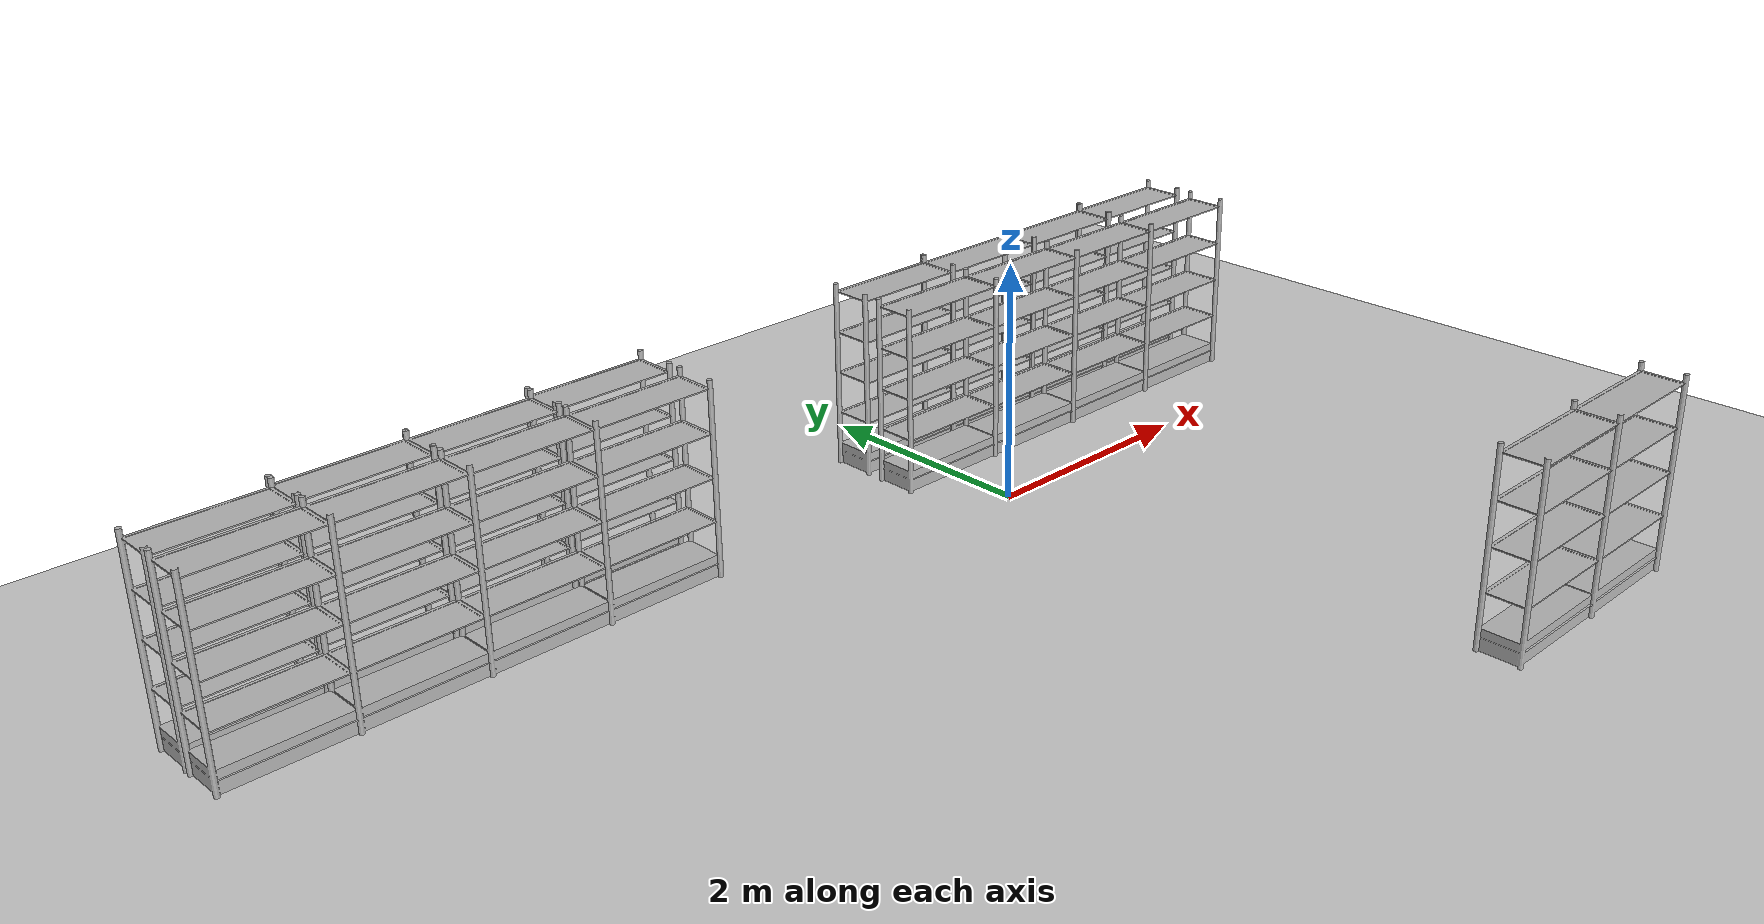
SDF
<sdf version="1.6">
 <world name="default">
  <light name="sun" type="directional">
   <pose>0 0 10 0 -0 0</pose>
   <diffuse>0.8 0.8 0.8 1</diffuse>
   <specular>0.2 0.2 0.2 1</specular>
   <attenuation>
    <range>1000</range>
    <constant>0.9</constant>
    <linear>0.01</linear>
    <quadratic>0.001</quadratic>
   </attenuation>
   <direction>-0.5 0.1 -0.9</direction>
  </light>
  <model name="ground_plane">
   <static>1</static>
   <link name="link">
    <collision name="collision">
     <geometry><plane><normal>0 0 1</normal><size>100 100</size></plane></geometry>
     <surface>
      <contact><collide_bitmask>65535</collide_bitmask></contact>
      <friction><ode><mu>1000</mu><mu2>1000</mu2></ode></friction>
     </surface>
    </collision>
    <visual name="visual">
     <cast_shadows>0</cast_shadows>
     <geometry><plane><normal>0 0 1</normal><size>100 100</size></plane></geometry>
     <material>
      <script><uri>file://media/materials/scripts/gazebo.material</uri><name>Gazebo/Grey</name></script>
     </material>
    </visual>
   </link>
  </model>
  <gravity>0 0 -9.8</gravity>
  <magnetic_field>6e-06 2.3e-05 -4.2e-05</magnetic_field>
  <atmosphere type="adiabatic"/>
  <physics name="default_physics" default="0" type="ode">
   <max_step_size>0.001</max_step_size>
   <real_time_factor>1</real_time_factor>
   <real_time_update_rate>1000</real_time_update_rate>
  </physics>
  <scene><ambient>0.4 0.4 0.4 1</ambient><background>0.7 0.7 0.7 1</background><shadows>1</shadows></scene>
  <audio><device>default</device></audio>
  <spherical_coordinates>
   <surface_model>EARTH_WGS84</surface_model>
   <latitude_deg>0</latitude_deg>
   <longitude_deg>0</longitude_deg>
   <elevation>0</elevation>
   <heading_deg>0</heading_deg>
  </spherical_coordinates>
  <model name="my_store_shelf_01_clone">
   <link name="link">
    <inertial>
     <mass>1000</mass>
     <inertia>
      <ixx>840083</ixx>
      <ixy>0</ixy>
      <ixz>0</ixz>
      <iyy>475500</iyy>
      <iyz>0</iyz>
      <izz>1.30208e+06</izz>
     </inertia>
    </inertial>
    <collision name="collision">
     <geometry>
      <mesh><uri>model://my_store_shelf_01/meshes/my_store_shelf_01.dae</uri><scale>1 1 1</scale></mesh>
     </geometry>
     <surface>
      <friction><ode><mu>0.5</mu><mu2>0.5</mu2><fdir1>0 0 0</fdir1><slip1>0</slip1><slip2>0</slip2></ode></friction>
     </surface>
    </collision>
    <visual name="visual">
     <geometry><mesh><uri>model://my_store_shelf_01/meshes/my_store_shelf_01.dae</uri></mesh></geometry>
     <meta><layer>2</layer></meta>
    </visual>
   </link>
   <static>1</static>
   <pose>0 1 0 0 -0 0</pose>
  </model>
  <model name="my_store_shelf_01_clone_clone">
   <link name="link">
    <inertial>
     <mass>1000</mass>
     <inertia>
      <ixx>840083</ixx>
      <ixy>0</ixy>
      <ixz>0</ixz>
      <iyy>475500</iyy>
      <iyz>0</iyz>
      <izz>1.30208e+06</izz>
     </inertia>
    </inertial>
    <collision name="collision">
     <geometry>
      <mesh><uri>model://my_store_shelf_01/meshes/my_store_shelf_01.dae</uri><scale>1 1 1</scale></mesh>
     </geometry>
     <surface>
      <friction><ode><mu>0.5</mu><mu2>0.5</mu2><fdir1>0 0 0</fdir1><slip1>0</slip1><slip2>0</slip2></ode></friction>
     </surface>
    </collision>
    <visual name="visual">
     <geometry><mesh><uri>model://my_store_shelf_01/meshes/my_store_shelf_01.dae</uri></mesh></geometry>
     <meta><layer>2</layer></meta>
    </visual>
   </link>
   <static>1</static>
   <pose>0 1.50587 0 0 -0 0</pose>
  </model>
  <model name="my_store_shelf_01_clone_clone_0">
   <link name="link">
    <inertial>
     <mass>1000</mass>
     <inertia>
      <ixx>840083</ixx>
      <ixy>0</ixy>
      <ixz>0</ixz>
      <iyy>475500</iyy>
      <iyz>0</iyz>
      <izz>1.30208e+06</izz>
     </inertia>
    </inertial>
    <collision name="collision">
     <geometry>
      <mesh><uri>model://my_store_shelf_01/meshes/my_store_shelf_01.dae</uri><scale>1 1 1</scale></mesh>
     </geometry>
     <surface>
      <friction><ode><mu>0.5</mu><mu2>0.5</mu2><fdir1>0 0 0</fdir1><slip1>0</slip1><slip2>0</slip2></ode></friction>
     </surface>
    </collision>
    <visual name="visual">
     <geometry><mesh><uri>model://my_store_shelf_01/meshes/my_store_shelf_01.dae</uri></mesh></geometry>
     <meta><layer>2</layer></meta>
    </visual>
   </link>
   <static>1</static>
   <pose>1 1 0 0 -0 0</pose>
  </model>
  <model name="my_store_shelf_01_clone_clone_clone">
   <link name="link">
    <inertial>
     <mass>1000</mass>
     <inertia>
      <ixx>840083</ixx>
      <ixy>0</ixy>
      <ixz>0</ixz>
      <iyy>475500</iyy>
      <iyz>0</iyz>
      <izz>1.30208e+06</izz>
     </inertia>
    </inertial>
    <collision name="collision">
     <geometry>
      <mesh><uri>model://my_store_shelf_01/meshes/my_store_shelf_01.dae</uri><scale>1 1 1</scale></mesh>
     </geometry>
     <surface>
      <friction><ode><mu>0.5</mu><mu2>0.5</mu2><fdir1>0 0 0</fdir1><slip1>0</slip1><slip2>0</slip2></ode></friction>
     </surface>
    </collision>
    <visual name="visual">
     <geometry><mesh><uri>model://my_store_shelf_01/meshes/my_store_shelf_01.dae</uri></mesh></geometry>
     <meta><layer>2</layer></meta>
    </visual>
   </link>
   <static>1</static>
   <pose>1 1.49893 0 0 -0 0</pose>
  </model>
  <model name="my_store_shelf_01_clone_clone_0_clone">
   <link name="link">
    <inertial>
     <mass>1000</mass>
     <inertia>
      <ixx>840083</ixx>
      <ixy>0</ixy>
      <ixz>0</ixz>
      <iyy>475500</iyy>
      <iyz>0</iyz>
      <izz>1.30208e+06</izz>
     </inertia>
    </inertial>
    <collision name="collision">
     <geometry>
      <mesh><uri>model://my_store_shelf_01/meshes/my_store_shelf_01.dae</uri><scale>1 1 1</scale></mesh>
     </geometry>
     <surface>
      <friction><ode><mu>0.5</mu><mu2>0.5</mu2><fdir1>0 0 0</fdir1><slip1>0</slip1><slip2>0</slip2></ode></friction>
     </surface>
    </collision>
    <visual name="visual">
     <geometry><mesh><uri>model://my_store_shelf_01/meshes/my_store_shelf_01.dae</uri></mesh></geometry>
     <meta><layer>2</layer></meta>
    </visual>
   </link>
   <static>1</static>
   <pose>2 1 0 0 -0 0</pose>
  </model>
  <model name="my_store_shelf_01_clone_clone_clone_clone">
   <link name="link">
    <inertial>
     <mass>1000</mass>
     <inertia>
      <ixx>840083</ixx>
      <ixy>0</ixy>
      <ixz>0</ixz>
      <iyy>475500</iyy>
      <iyz>0</iyz>
      <izz>1.30208e+06</izz>
     </inertia>
    </inertial>
    <collision name="collision">
     <geometry>
      <mesh><uri>model://my_store_shelf_01/meshes/my_store_shelf_01.dae</uri><scale>1 1 1</scale></mesh>
     </geometry>
     <surface>
      <friction><ode><mu>0.5</mu><mu2>0.5</mu2><fdir1>0 0 0</fdir1><slip1>0</slip1><slip2>0</slip2></ode></friction>
     </surface>
    </collision>
    <visual name="visual">
     <geometry><mesh><uri>model://my_store_shelf_01/meshes/my_store_shelf_01.dae</uri></mesh></geometry>
     <meta><layer>2</layer></meta>
    </visual>
   </link>
   <static>1</static>
   <pose>2 1.49472 0 0 -0 0</pose>
  </model>
  <model name="my_store_shelf_01_clone_clone_clone_0">
   <link name="link">
    <inertial>
     <mass>1000</mass>
     <inertia>
      <ixx>840083</ixx>
      <ixy>0</ixy>
      <ixz>0</ixz>
      <iyy>475500</iyy>
      <iyz>0</iyz>
      <izz>1.30208e+06</izz>
     </inertia>
    </inertial>
    <collision name="collision">
     <geometry>
      <mesh><uri>model://my_store_shelf_01/meshes/my_store_shelf_01.dae</uri><scale>1 1 1</scale></mesh>
     </geometry>
     <surface>
      <friction><ode><mu>0.5</mu><mu2>0.5</mu2><fdir1>0 0 0</fdir1><slip1>0</slip1><slip2>0</slip2></ode></friction>
     </surface>
    </collision>
    <visual name="visual">
     <geometry><mesh><uri>model://my_store_shelf_01/meshes/my_store_shelf_01.dae</uri></mesh></geometry>
     <meta><layer>2</layer></meta>
    </visual>
   </link>
   <static>1</static>
   <pose>-3 1 0 0 -0 0</pose>
  </model>
  <model name="my_store_shelf_01_clone_clone_clone_1">
   <link name="link">
    <inertial>
     <mass>1000</mass>
     <inertia>
      <ixx>840083</ixx>
      <ixy>0</ixy>
      <ixz>0</ixz>
      <iyy>475500</iyy>
      <iyz>0</iyz>
      <izz>1.30208e+06</izz>
     </inertia>
    </inertial>
    <collision name="collision">
     <geometry>
      <mesh><uri>model://my_store_shelf_01/meshes/my_store_shelf_01.dae</uri><scale>1 1 1</scale></mesh>
     </geometry>
     <surface>
      <friction><ode><mu>0.5</mu><mu2>0.5</mu2><fdir1>0 0 0</fdir1><slip1>0</slip1><slip2>0</slip2></ode></friction>
     </surface>
    </collision>
    <visual name="visual">
     <geometry><mesh><uri>model://my_store_shelf_01/meshes/my_store_shelf_01.dae</uri></mesh></geometry>
     <meta><layer>2</layer></meta>
    </visual>
   </link>
   <static>1</static>
   <pose>-4 1 0 0 -0 0</pose>
  </model>
  <model name="my_store_shelf_01_clone_clone_clone_2">
   <link name="link">
    <inertial>
     <mass>1000</mass>
     <inertia>
      <ixx>840083</ixx>
      <ixy>0</ixy>
      <ixz>0</ixz>
      <iyy>475500</iyy>
      <iyz>0</iyz>
      <izz>1.30208e+06</izz>
     </inertia>
    </inertial>
    <collision name="collision">
     <geometry>
      <mesh><uri>model://my_store_shelf_01/meshes/my_store_shelf_01.dae</uri><scale>1 1 1</scale></mesh>
     </geometry>
     <surface>
      <friction><ode><mu>0.5</mu><mu2>0.5</mu2><fdir1>0 0 0</fdir1><slip1>0</slip1><slip2>0</slip2></ode></friction>
     </surface>
    </collision>
    <visual name="visual">
     <geometry><mesh><uri>model://my_store_shelf_01/meshes/my_store_shelf_01.dae</uri></mesh></geometry>
     <meta><layer>2</layer></meta>
    </visual>
   </link>
   <static>1</static>
   <pose>-5 1 0 0 -0 0</pose>
  </model>
  <model name="my_store_shelf_01_clone_clone_clone_3">
   <link name="link">
    <inertial>
     <mass>1000</mass>
     <inertia>
      <ixx>840083</ixx>
      <ixy>0</ixy>
      <ixz>0</ixz>
      <iyy>475500</iyy>
      <iyz>0</iyz>
      <izz>1.30208e+06</izz>
     </inertia>
    </inertial>
    <collision name="collision">
     <geometry>
      <mesh><uri>model://my_store_shelf_01/meshes/my_store_shelf_01.dae</uri><scale>1 1 1</scale></mesh>
     </geometry>
     <surface>
      <friction><ode><mu>0.5</mu><mu2>0.5</mu2><fdir1>0 0 0</fdir1><slip1>0</slip1><slip2>0</slip2></ode></friction>
     </surface>
    </collision>
    <visual name="visual">
     <geometry><mesh><uri>model://my_store_shelf_01/meshes/my_store_shelf_01.dae</uri></mesh></geometry>
     <meta><layer>2</layer></meta>
    </visual>
   </link>
   <static>1</static>
   <pose>-6 1 0 0 -0 0</pose>
  </model>
  <model name="my_store_shelf_01_clone_clone_clone_0_clone">
   <link name="link">
    <inertial>
     <mass>1000</mass>
     <inertia>
      <ixx>840083</ixx>
      <ixy>0</ixy>
      <ixz>0</ixz>
      <iyy>475500</iyy>
      <iyz>0</iyz>
      <izz>1.30208e+06</izz>
     </inertia>
    </inertial>
    <collision name="collision">
     <geometry>
      <mesh><uri>model://my_store_shelf_01/meshes/my_store_shelf_01.dae</uri><scale>1 1 1</scale></mesh>
     </geometry>
     <surface>
      <friction><ode><mu>0.5</mu><mu2>0.5</mu2><fdir1>0 0 0</fdir1><slip1>0</slip1><slip2>0</slip2></ode></friction>
     </surface>
    </collision>
    <visual name="visual">
     <geometry><mesh><uri>model://my_store_shelf_01/meshes/my_store_shelf_01.dae</uri></mesh></geometry>
     <meta><layer>2</layer></meta>
    </visual>
   </link>
   <static>1</static>
   <pose>-3 1.47066 0 0 -0 0</pose>
  </model>
  <model name="my_store_shelf_01_clone_clone_clone_1_clone">
   <link name="link">
    <inertial>
     <mass>1000</mass>
     <inertia>
      <ixx>840083</ixx>
      <ixy>0</ixy>
      <ixz>0</ixz>
      <iyy>475500</iyy>
      <iyz>0</iyz>
      <izz>1.30208e+06</izz>
     </inertia>
    </inertial>
    <collision name="collision">
     <geometry>
      <mesh><uri>model://my_store_shelf_01/meshes/my_store_shelf_01.dae</uri><scale>1 1 1</scale></mesh>
     </geometry>
     <surface>
      <friction><ode><mu>0.5</mu><mu2>0.5</mu2><fdir1>0 0 0</fdir1><slip1>0</slip1><slip2>0</slip2></ode></friction>
     </surface>
    </collision>
    <visual name="visual">
     <geometry><mesh><uri>model://my_store_shelf_01/meshes/my_store_shelf_01.dae</uri></mesh></geometry>
     <meta><layer>2</layer></meta>
    </visual>
   </link>
   <static>1</static>
   <pose>-4 1.43223 0 0 -0 0</pose>
  </model>
  <model name="my_store_shelf_01_clone_clone_clone_2_clone">
   <link name="link">
    <inertial>
     <mass>1000</mass>
     <inertia>
      <ixx>840083</ixx>
      <ixy>0</ixy>
      <ixz>0</ixz>
      <iyy>475500</iyy>
      <iyz>0</iyz>
      <izz>1.30208e+06</izz>
     </inertia>
    </inertial>
    <collision name="collision">
     <geometry>
      <mesh><uri>model://my_store_shelf_01/meshes/my_store_shelf_01.dae</uri><scale>1 1 1</scale></mesh>
     </geometry>
     <surface>
      <friction><ode><mu>0.5</mu><mu2>0.5</mu2><fdir1>0 0 0</fdir1><slip1>0</slip1><slip2>0</slip2></ode></friction>
     </surface>
    </collision>
    <visual name="visual">
     <geometry><mesh><uri>model://my_store_shelf_01/meshes/my_store_shelf_01.dae</uri></mesh></geometry>
     <meta><layer>2</layer></meta>
    </visual>
   </link>
   <static>1</static>
   <pose>-5 1.43854 0 0 -0 0</pose>
  </model>
  <model name="my_store_shelf_01_clone_clone_clone_3_clone">
   <link name="link">
    <inertial>
     <mass>1000</mass>
     <inertia>
      <ixx>840083</ixx>
      <ixy>0</ixy>
      <ixz>0</ixz>
      <iyy>475500</iyy>
      <iyz>0</iyz>
      <izz>1.30208e+06</izz>
     </inertia>
    </inertial>
    <collision name="collision">
     <geometry>
      <mesh><uri>model://my_store_shelf_01/meshes/my_store_shelf_01.dae</uri><scale>1 1 1</scale></mesh>
     </geometry>
     <surface>
      <friction><ode><mu>0.5</mu><mu2>0.5</mu2><fdir1>0 0 0</fdir1><slip1>0</slip1><slip2>0</slip2></ode></friction>
     </surface>
    </collision>
    <visual name="visual">
     <geometry><mesh><uri>model://my_store_shelf_01/meshes/my_store_shelf_01.dae</uri></mesh></geometry>
     <meta><layer>2</layer></meta>
    </visual>
   </link>
   <static>1</static>
   <pose>-6 1.4035 0 0 -0 0</pose>
  </model>
  <model name="my_store_shelf_01_clone_clone_0_clone_clone">
   <link name="link">
    <inertial>
     <mass>1000</mass>
     <inertia>
      <ixx>840083</ixx>
      <ixy>0</ixy>
      <ixz>0</ixz>
      <iyy>475500</iyy>
      <iyz>0</iyz>
      <izz>1.30208e+06</izz>
     </inertia>
    </inertial>
    <collision name="collision">
     <geometry>
      <mesh><uri>model://my_store_shelf_01/meshes/my_store_shelf_01.dae</uri><scale>1 1 1</scale></mesh>
     </geometry>
     <surface>
      <friction><ode><mu>0.5</mu><mu2>0.5</mu2><fdir1>0 0 0</fdir1><slip1>0</slip1><slip2>0</slip2></ode></friction>
     </surface>
    </collision>
    <visual name="visual">
     <geometry><mesh><uri>model://my_store_shelf_01/meshes/my_store_shelf_01.dae</uri></mesh></geometry>
     <meta><layer>2</layer></meta>
    </visual>
   </link>
   <static>1</static>
   <pose>3 1 0 0 -0 0</pose>
  </model>
  <model name="my_store_shelf_01_clone_clone_clone_clone_clone">
   <link name="link">
    <inertial>
     <mass>1000</mass>
     <inertia>
      <ixx>840083</ixx>
      <ixy>0</ixy>
      <ixz>0</ixz>
      <iyy>475500</iyy>
      <iyz>0</iyz>
      <izz>1.30208e+06</izz>
     </inertia>
    </inertial>
    <collision name="collision">
     <geometry>
      <mesh><uri>model://my_store_shelf_01/meshes/my_store_shelf_01.dae</uri><scale>1 1 1</scale></mesh>
     </geometry>
     <surface>
      <friction><ode><mu>0.5</mu><mu2>0.5</mu2><fdir1>0 0 0</fdir1><slip1>0</slip1><slip2>0</slip2></ode></friction>
     </surface>
    </collision>
    <visual name="visual">
     <geometry><mesh><uri>model://my_store_shelf_01/meshes/my_store_shelf_01.dae</uri></mesh></geometry>
     <meta><layer>2</layer></meta>
    </visual>
   </link>
   <static>1</static>
   <pose>3 1.50741 0 0 -0 0</pose>
  </model>
  <model name="my_store_shelf_01_clone_clone_0_clone_clone_clone">
   <link name="link">
    <inertial>
     <mass>1000</mass>
     <inertia>
      <ixx>840083</ixx>
      <ixy>0</ixy>
      <ixz>0</ixz>
      <iyy>475500</iyy>
      <iyz>0</iyz>
      <izz>1.30208e+06</izz>
     </inertia>
    </inertial>
    <collision name="collision">
     <geometry>
      <mesh><uri>model://my_store_shelf_01/meshes/my_store_shelf_01.dae</uri><scale>1 1 1</scale></mesh>
     </geometry>
     <surface>
      <friction><ode><mu>0.5</mu><mu2>0.5</mu2><fdir1>0 0 0</fdir1><slip1>0</slip1><slip2>0</slip2></ode></friction>
     </surface>
    </collision>
    <visual name="visual">
     <geometry><mesh><uri>model://my_store_shelf_01/meshes/my_store_shelf_01.dae</uri></mesh></geometry>
     <meta><layer>2</layer></meta>
    </visual>
   </link>
   <static>1</static>
   <pose>2 -4 0 0 -0 0</pose>
  </model>
  <model name="my_store_shelf_01_clone_clone_0_clone_clone_clone_0">
   <link name="link">
    <inertial>
     <mass>1000</mass>
     <inertia>
      <ixx>840083</ixx>
      <ixy>0</ixy>
      <ixz>0</ixz>
      <iyy>475500</iyy>
      <iyz>0</iyz>
      <izz>1.30208e+06</izz>
     </inertia>
    </inertial>
    <collision name="collision">
     <geometry>
      <mesh><uri>model://my_store_shelf_01/meshes/my_store_shelf_01.dae</uri><scale>1 1 1</scale></mesh>
     </geometry>
     <surface>
      <friction><ode><mu>0.5</mu><mu2>0.5</mu2><fdir1>0 0 0</fdir1><slip1>0</slip1><slip2>0</slip2></ode></friction>
     </surface>
    </collision>
    <visual name="visual">
     <geometry><mesh><uri>model://my_store_shelf_01/meshes/my_store_shelf_01.dae</uri></mesh></geometry>
     <meta><layer>2</layer></meta>
    </visual>
   </link>
   <static>1</static>
   <pose>1 -4 0 0 -0 0</pose>
  </model>
  <plugin name="ActorPosesPlugin" filename="libActorPosesPlugin.so"/>
 </world>
</sdf>
